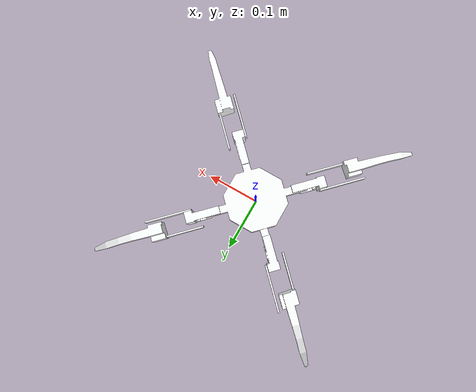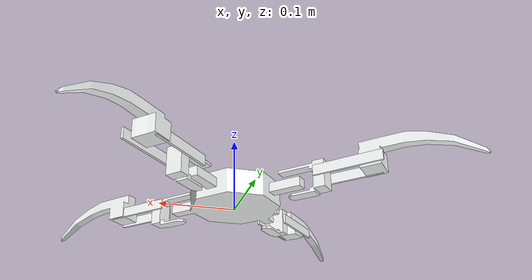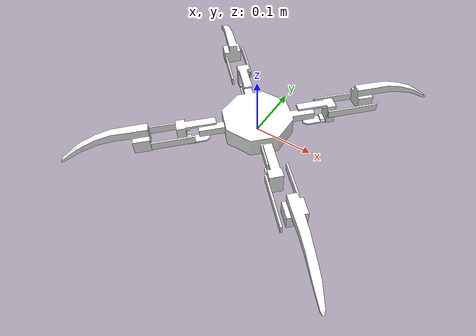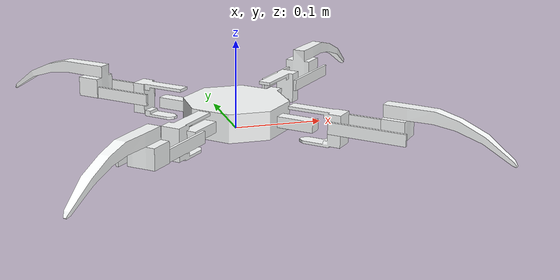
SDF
<?xml version="1.0" encoding="utf-8"?>

<sdf version='1.9'>
  <model name='laracna'>
    <link name='base_link'>
      <inertial>
        <pose>-0.000549635703823248 0.000293483149070013 0.0112605913949021 0 0 0</pose>
        <mass>0.14927705759424001</mass>
      </inertial>
      <collision name='base_link_collision'>
        <pose>0 0 0 0 0 0</pose>
        <geometry>
          <mesh>
            <scale>1 1 1</scale>
            <uri>package://ros_gz_example_description/meshes/base_link_collider.stl</uri>
          </mesh>
        </geometry>
      </collision>
      <visual name='base_link_visual'>
        <pose>0 0 0 0 0 0</pose>
        <geometry>
          <mesh>
            <scale>1 1 1</scale>
            <uri>package://ros_gz_example_description/meshes/base_link_collider.stl</uri>
          </mesh>
        </geometry>
        <material>
          <diffuse>0.990196 1 1 1</diffuse>
          <ambient>0.990196 1 1 1</ambient>
        </material>
      </visual>
    </link>
    <joint name='coxa_lb_j' type='revolute'>
      <pose relative_to='base_link'>-0.06297700000000001 0.062553 0.0355 1.5708 0 2.3562</pose>
      <parent>base_link</parent>
      <child>coxa_lb</child>
      <axis>
        <xyz>0 1 0</xyz>
        <limit>
          <lower>-10000000000000000</lower>
          <upper>10000000000000000</upper>
        </limit>
        <dynamics>
          <damping>0.10000000000000001</damping>
          <friction>0.10000000000000001</friction>
          <spring_reference>0</spring_reference>
          <spring_stiffness>0</spring_stiffness>
        </dynamics>
      </axis>
    </joint>
    <link name='coxa_lb'>
      <pose relative_to='coxa_lb_j'>0 0 0 0 0 0</pose>
      <inertial>
        <pose>0.0311676418899572 -0.0171857800823059 -0.000875524395071652 0 0 0</pose>
        <mass>0.016883587648962601</mass>
        <inertia>
          <ixx>1.6952188219386e-06</ixx>
          <ixy>3.8328722716107099e-09</ixy>
          <ixz>-1.68767618013713e-08</ixz>
          <iyy>1.4858149033158899e-06</iyy>
          <iyz>2.6793634129095399e-08</iyz>
          <izz>1.7787742903464599e-06</izz>
        </inertia>
      </inertial>
      <collision name='coxa_lb_collision'>
        <pose>0 0 0 0 0 0</pose>
        <geometry>
          <mesh>
            <scale>1 1 1</scale>
            <uri>package://ros_gz_example_description/meshes/coxa_lb_collider.stl</uri>
          </mesh>
        </geometry>
      </collision>
      <visual name='coxa_lb_visual'>
        <pose>0 0 0 0 0 0</pose>
        <geometry>
          <mesh>
            <scale>1 1 1</scale>
            <uri>package://ros_gz_example_description/meshes/coxa_lb_collider.stl</uri>
          </mesh>
        </geometry>
        <material>
          <diffuse>0.990196 1 1 1</diffuse>
          <ambient>0.990196 1 1 1</ambient>
        </material>
      </visual>
    </link>
    <joint name='femur_lb_j' type='revolute'>
      <pose relative_to='coxa_lb'>0.03814 -0.0126 -0.02153 0.0016676 0.0016676 0.0</pose>
      <parent>coxa_lb</parent>
      <child>femur_lb</child>
      <axis>
        <xyz>0 0 -1</xyz>
        <limit>
          <lower>-10000000000000000</lower>
          <upper>10000000000000000</upper>
        </limit>
        <dynamics>
          <damping>0.10000000000000001</damping>
          <friction>0.10000000000000001</friction>
          <spring_reference>0</spring_reference>
          <spring_stiffness>0</spring_stiffness>
        </dynamics>
      </axis>
    </joint>
    <link name='femur_lb'>
      <pose relative_to='femur_lb_j'>0 0 0 0 0 0</pose>
      <inertial>
        <pose>0.0300000000000009 -4.00077502987761e-06 0.0177499999999991 0 0 0</pose>
        <mass>0.0087586509816886208</mass>
        <inertia>
          <ixx>2.35107438626411e-07</ixx>
          <ixy>-3.6395946952333199e-22</ixy>
          <ixz>-3.1996158667402898e-09</ixz>
          <iyy>1.10345188527737e-06</iyy>
          <iyz>-2.6469779601696897e-23</iyz>
          <izz>1.32562067354555e-06</izz>
        </inertia>
      </inertial>
      <collision name='femur_lb_collision'>
        <pose>0 0 0 0 0 0</pose>
        <geometry>
          <mesh>
            <scale>1 1 1</scale>
            <uri>package://ros_gz_example_description/meshes/femur_lb_collider.stl</uri>
          </mesh>
        </geometry>
      </collision>
      <visual name='femur_lb_visual'>
        <pose>0 0 0 0 0 0</pose>
        <geometry>
          <mesh>
            <scale>1 1 1</scale>
            <uri>package://ros_gz_example_description/meshes/femur_lb_collider.stl</uri>
          </mesh>
        </geometry>
        <material>
          <diffuse>0.990196 1 1 1</diffuse>
          <ambient>0.990196 1 1 1</ambient>
        </material>
      </visual>
    </link>
    <joint name='tibia_lb_j' type='revolute'>
      <pose relative_to='femur_lb'>0.06 0 0.0355 0 0 0.0</pose>
      <parent>femur_lb</parent>
      <child>tibia_lb</child>
      <axis>
        <xyz>0 0 1</xyz>
        <limit>
          <lower>-10000000000000000</lower>
          <upper>10000000000000000</upper>
        </limit>
        <dynamics>
          <damping>0.10000000000000001</damping>
          <friction>0.10000000000000001</friction>
          <spring_reference>0</spring_reference>
          <spring_stiffness>0</spring_stiffness>
        </dynamics>
      </axis>
    </joint>
    <link name='tibia_lb'>
      <pose relative_to='tibia_lb_j'>0 0 0 0 0 0</pose>
      <inertial>
        <pose>0.0253809510265003 0.00775604947350703 -0.0209014173200577 0 0 0</pose>
        <mass>0.024465634890062701</mass>
        <inertia>
          <ixx>2.23438595150403e-06</ixx>
          <ixy>3.41065896314887e-06</ixy>
          <ixz>2.6777231332716699e-08</ixz>
          <iyy>1.8425419902973798e-05</iyy>
          <iyz>-1.7331887953733701e-08</iyz>
          <izz>1.9115314259691301e-05</izz>
        </inertia>
      </inertial>
      <collision name='tibia_lb_collision'>
        <pose>0 0 0 0 0 0</pose>
        <geometry>
          <mesh>
            <scale>1 1 1</scale>
            <uri>package://ros_gz_example_description/meshes/tibia_lb_collider.stl</uri>
          </mesh>
        </geometry>
      </collision>
      <visual name='tibia_lb_visual'>
        <pose>0 0 0 0 0 0</pose>
        <geometry>
          <mesh>
            <scale>1 1 1</scale>
            <uri>package://ros_gz_example_description/meshes/tibia_lb_collider.stl</uri>
          </mesh>
        </geometry>
        <material>
          <diffuse>0.990196 1 1 1</diffuse>
          <ambient>0.990196 1 1 1</ambient>
        </material>
      </visual>
    </link>
    <joint name='coxa_lt_j' type='revolute'>
      <pose relative_to='base_link'>0.062553 0.06297700000000001 0.0355 1.5708 0 0.7854000000000001</pose>
      <parent>base_link</parent>
      <child>coxa_lt</child>
      <axis>
        <xyz>0 1 0</xyz>
        <limit>
          <lower>-10000000000000000</lower>
          <upper>10000000000000000</upper>
        </limit>
        <dynamics>
          <damping>0.10000000000000001</damping>
          <friction>0.10000000000000001</friction>
          <spring_reference>0</spring_reference>
          <spring_stiffness>0</spring_stiffness>
        </dynamics>
      </axis>
    </joint>
    <link name='coxa_lt'>
      <pose relative_to='coxa_lt_j'>0 0 0 0 0 0</pose>
      <inertial>
        <pose>0.0311676418899575 -0.0171857800823059 -0.000875524395070736 0 0 0</pose>
        <mass>0.016883587648962601</mass>
        <inertia>
          <ixx>1.6952188219386e-06</ixx>
          <ixy>3.8328722716109299e-09</ixy>
          <ixz>-1.6876761801371101e-08</ixz>
          <iyy>1.4858149033158899e-06</iyy>
          <iyz>2.6793634129094899e-08</iyz>
          <izz>1.7787742903464599e-06</izz>
        </inertia>
      </inertial>
      <collision name='coxa_lt_collision'>
        <pose>0 0 0 0 0 0</pose>
        <geometry>
          <mesh>
            <scale>1 1 1</scale>
            <uri>package://ros_gz_example_description/meshes/coxa_lb_collider.stl</uri>
          </mesh>
        </geometry>
      </collision>
      <visual name='coxa_lt_visual'>
        <pose>0 0 0 0 0 0</pose>
        <geometry>
          <mesh>
            <scale>1 1 1</scale>
            <uri>package://ros_gz_example_description/meshes/coxa_lb_collider.stl</uri>
          </mesh>
        </geometry>
        <material>
          <diffuse>0.990196 1 1 1</diffuse>
          <ambient>0.990196 1 1 1</ambient>
        </material>
      </visual>
    </link>
    <joint name='femur_lt_j' type='revolute'>
      <pose relative_to='coxa_lt'>0.03814 -0.0126 -0.02153 0.0016676 0.0016676 0.0</pose>
      <parent>coxa_lt</parent>
      <child>femur_lt</child>
      <axis>
        <xyz>0 0 -1</xyz>
        <limit>
          <lower>-10000000000000000</lower>
          <upper>10000000000000000</upper>
        </limit>
        <dynamics>
          <damping>0.10000000000000001</damping>
          <friction>0.10000000000000001</friction>
          <spring_reference>0</spring_reference>
          <spring_stiffness>0</spring_stiffness>
        </dynamics>
      </axis>
    </joint>
    <link name='femur_lt'>
      <pose relative_to='femur_lt_j'>0 0 0 0 0 0</pose>
      <inertial>
        <pose>0.0300000000000001 -4.00077503040497e-06 0.01775 0 0 0</pose>
        <mass>0.0087586509816886</mass>
        <inertia>
          <ixx>2.35107438626411e-07</ixx>
          <ixy>5.2277814713351302e-22</ixy>
          <ixz>-3.1996158667403002e-09</ixz>
          <iyy>1.10345188527737e-06</iyy>
          <iyz>-4.4998625322884696e-22</iyz>
          <izz>1.32562067354555e-06</izz>
        </inertia>
      </inertial>
      <collision name='femur_lt_collision'>
        <pose>0 0 0 0 0 0</pose>
        <geometry>
          <mesh>
            <scale>1 1 1</scale>
            <uri>package://ros_gz_example_description/meshes/femur_lb_collider.stl</uri>
          </mesh>
        </geometry>
      </collision>
      <visual name='femur_lt_visual'>
        <pose>0 0 0 0 0 0</pose>
        <geometry>
          <mesh>
            <scale>1 1 1</scale>
            <uri>package://ros_gz_example_description/meshes/femur_lb_collider.stl</uri>
          </mesh>
        </geometry>
        <material>
          <diffuse>0.990196 1 1 1</diffuse>
          <ambient>0.990196 1 1 1</ambient>
        </material>
      </visual>
    </link>
    <joint name='tibia_lt_j' type='revolute'>
      <pose relative_to='femur_lt'>0.06 0 0.0355 0 0 0.0</pose>
      <parent>femur_lt</parent>
      <child>tibia_lt</child>
      <axis>
        <xyz>0 0 1</xyz>
        <limit>
          <lower>-10000000000000000</lower>
          <upper>10000000000000000</upper>
        </limit>
        <dynamics>
          <damping>0.10000000000000001</damping>
          <friction>0.10000000000000001</friction>
          <spring_reference>0</spring_reference>
          <spring_stiffness>0</spring_stiffness>
        </dynamics>
      </axis>
    </joint>
    <link name='tibia_lt'>
      <pose relative_to='tibia_lt_j'>0 0 0 0 0 0</pose>
      <inertial>
        <pose>0.0253797905900474 0.00775572324591811 -0.0209014190388057 0 0 0</pose>
        <mass>0.024465640203770501</mass>
        <inertia>
          <ixx>2.23538745051556e-06</ixx>
          <ixy>3.4090374518825201e-06</ixy>
          <ixz>2.6777394321015401e-08</ixz>
          <iyy>1.8424422417696899e-05</iyy>
          <iyz>-1.7331806563168698e-08</iyz>
          <izz>1.9115318342821998e-05</izz>
        </inertia>
      </inertial>
      <collision name='tibia_lt_collision'>
        <pose>0 0 0 0 0 0</pose>
        <geometry>
          <mesh>
            <scale>1 1 1</scale>
            <uri>package://ros_gz_example_description/meshes/tibia_lb_collider.stl</uri>
          </mesh>
        </geometry>
      </collision>
      <visual name='tibia_lt_visual'>
        <pose>0 0 0 0 0 0</pose>
        <geometry>
          <mesh>
            <scale>1 1 1</scale>
            <uri>package://ros_gz_example_description/meshes/tibia_lb_collider.stl</uri>
          </mesh>
        </geometry>
        <material>
          <diffuse>0.990196 1 1 1</diffuse>
          <ambient>0.990196 1 1 1</ambient>
        </material>
      </visual>
    </link>
    <joint name='coxa_rb_j' type='revolute'>
      <pose relative_to='base_link'>-0.062553 -0.06297700000000001 0.0355 1.5708 0 -2.3562</pose>
      <parent>base_link</parent>
      <child>coxa_rb</child>
      <axis>
        <xyz>0 1 0</xyz>
        <limit>
          <lower>-10000000000000000</lower>
          <upper>10000000000000000</upper>
        </limit>
        <dynamics>
          <damping>0.10000000000000001</damping>
          <friction>0.10000000000000001</friction>
          <spring_reference>0</spring_reference>
          <spring_stiffness>0</spring_stiffness>
        </dynamics>
      </axis>
    </joint>
    <link name='coxa_rb'>
      <pose relative_to='coxa_rb_j'>0 0 0 0 0 0</pose>
      <inertial>
        <pose>0.0311676418899572 -0.0171857800823059 -0.000875524395071652 0 0 0</pose>
        <mass>0.016883587648962601</mass>
        <inertia>
          <ixx>1.6952188219386e-06</ixx>
          <ixy>3.8328722716109299e-09</ixy>
          <ixz>-1.6876761801371399e-08</ixz>
          <iyy>1.4858149033158899e-06</iyy>
          <iyz>2.6793634129095101e-08</iyz>
          <izz>1.7787742903464599e-06</izz>
        </inertia>
      </inertial>
      <collision name='coxa_rb_collision'>
        <pose>0 0 0 0 0 0</pose>
        <geometry>
          <mesh>
            <scale>1 1 1</scale>
            <uri>package://ros_gz_example_description/meshes/coxa_lb_collider.stl</uri>
          </mesh>
        </geometry>
      </collision>
      <visual name='coxa_rb_visual'>
        <pose>0 0 0 0 0 0</pose>
        <geometry>
          <mesh>
            <scale>1 1 1</scale>
            <uri>package://ros_gz_example_description/meshes/coxa_lb_collider.stl</uri>
          </mesh>
        </geometry>
        <material>
          <diffuse>0.990196 1 1 1</diffuse>
          <ambient>0.990196 1 1 1</ambient>
        </material>
      </visual>
    </link>
    <joint name='femur_rb_j' type='revolute'>
      <pose relative_to='coxa_rb'>0.03814 -0.0126 -0.02153 0.0016676 0.0016676 0.0</pose>
      <parent>coxa_rb</parent>
      <child>femur_rb</child>
      <axis>
        <xyz>0 0 -1</xyz>
        <limit>
          <lower>-10000000000000000</lower>
          <upper>10000000000000000</upper>
        </limit>
        <dynamics>
          <damping>0.10000000000000001</damping>
          <friction>0.10000000000000001</friction>
          <spring_reference>0</spring_reference>
          <spring_stiffness>0</spring_stiffness>
        </dynamics>
      </axis>
    </joint>
    <link name='femur_rb'>
      <pose relative_to='femur_rb_j'>0 0 0 0 0 0</pose>
      <inertial>
        <pose>0.0300000000000003 -4.00077503072416e-06 0.0177499999999999 0 0 0</pose>
        <mass>0.0087586509816885896</mass>
        <inertia>
          <ixx>2.35107438626411e-07</ixx>
          <ixy>4.8307347773096797e-22</ixy>
          <ixz>-3.19961586674027e-09</ixz>
          <iyy>1.10345188527737e-06</iyy>
          <iyz>-1.32348898008484e-22</iyz>
          <izz>1.32562067354555e-06</izz>
        </inertia>
      </inertial>
      <collision name='femur_rb_collision'>
        <pose>0 0 0 0 0 0</pose>
        <geometry>
          <mesh>
            <scale>1 1 1</scale>
            <uri>package://ros_gz_example_description/meshes/femur_lb_collider.stl</uri>
          </mesh>
        </geometry>
      </collision>
      <visual name='femur_rb_visual'>
        <pose>0 0 0 0 0 0</pose>
        <geometry>
          <mesh>
            <scale>1 1 1</scale>
            <uri>package://ros_gz_example_description/meshes/femur_lb_collider.stl</uri>
          </mesh>
        </geometry>
        <material>
          <diffuse>0.990196 1 1 1</diffuse>
          <ambient>0.990196 1 1 1</ambient>
        </material>
      </visual>
    </link>
    <joint name='tibia_rb_j' type='revolute'>
      <pose relative_to='femur_rb'>0.06 0 0.0355 0 0 0.0</pose>
      <parent>femur_rb</parent>
      <child>tibia_rb</child>
      <axis>
        <xyz>0 0 1</xyz>
        <limit>
          <lower>-10000000000000000</lower>
          <upper>10000000000000000</upper>
        </limit>
        <dynamics>
          <damping>0.10000000000000001</damping>
          <friction>0.10000000000000001</friction>
          <spring_reference>0</spring_reference>
          <spring_stiffness>0</spring_stiffness>
        </dynamics>
      </axis>
    </joint>
    <link name='tibia_rb'>
      <pose relative_to='tibia_rb_j'>0 0 0 0 0 0</pose>
      <inertial>
        <pose>0.0253791910136747 0.00775560067495526 -0.0209014204080387 0 0 0</pose>
        <mass>0.024465633499710801</mass>
        <inertia>
          <ixx>2.2357718345824198e-06</ixx>
          <ixy>3.4081973690407799e-06</ixy>
          <ixz>2.6779975325357602e-08</ixz>
          <iyy>1.8424041465719599e-05</iyy>
          <iyz>-1.7332665172973501e-08</iyz>
          <izz>1.9115321876941701e-05</izz>
        </inertia>
      </inertial>
      <collision name='tibia_rb_collision'>
        <pose>0 0 0 0 0 0</pose>
        <geometry>
          <mesh>
            <scale>1 1 1</scale>
            <uri>package://ros_gz_example_description/meshes/tibia_lb_collider.stl</uri>
          </mesh>
        </geometry>
      </collision>
      <visual name='tibia_rb_visual'>
        <pose>0 0 0 0 0 0</pose>
        <geometry>
          <mesh>
            <scale>1 1 1</scale>
            <uri>package://ros_gz_example_description/meshes/tibia_lb_collider.stl</uri>
          </mesh>
        </geometry>
        <material>
          <diffuse>0.990196 1 1 1</diffuse>
          <ambient>0.990196 1 1 1</ambient>
        </material>
      </visual>
    </link>
    <joint name='coxa_rt_j' type='revolute'>
      <pose relative_to='base_link'>0.06297700000000001 -0.062553 0.0355 1.5708 0 -0.7854000000000001</pose>
      <parent>base_link</parent>
      <child>coxa_rt</child>
      <axis>
        <xyz>0 1 0</xyz>
        <limit>
          <lower>-10000000000000000</lower>
          <upper>10000000000000000</upper>
        </limit>
        <dynamics>
          <damping>0.10000000000000001</damping>
          <friction>0.10000000000000001</friction>
          <spring_reference>0</spring_reference>
          <spring_stiffness>0</spring_stiffness>
        </dynamics>
      </axis>
    </joint>
    <link name='coxa_rt'>
      <pose relative_to='coxa_rt_j'>0 0 0 0 0 0</pose>
      <inertial>
        <pose>0.0311676418899572 -0.0171857800823059 -0.000875524395071665 0 0 0</pose>
        <mass>0.016883587648962601</mass>
        <inertia>
          <ixx>1.6952188219386e-06</ixx>
          <ixy>3.8328722716107099e-09</ixy>
          <ixz>-1.68767618013712e-08</ixz>
          <iyy>1.4858149033159001e-06</iyy>
          <iyz>2.6793634129094998e-08</iyz>
          <izz>1.7787742903464599e-06</izz>
        </inertia>
      </inertial>
      <collision name='coxa_rt_collision'>
        <pose>0 0 0 0 0 0</pose>
        <geometry>
          <mesh>
            <scale>1 1 1</scale>
            <uri>package://ros_gz_example_description/meshes/coxa_lb_collider.stl</uri>
          </mesh>
        </geometry>
      </collision>
      <visual name='coxa_rt_visual'>
        <pose>0 0 0 0 0 0</pose>
        <geometry>
          <mesh>
            <scale>1 1 1</scale>
            <uri>package://ros_gz_example_description/meshes/coxa_lb_collider.stl</uri>
          </mesh>
        </geometry>
        <material>
          <diffuse>0.990196 1 1 1</diffuse>
          <ambient>0.990196 1 1 1</ambient>
        </material>
      </visual>
    </link>
    <joint name='femur_rt_j' type='revolute'>
      <pose relative_to='coxa_rt'>0.03814 -0.0126 -0.02153 0.0016676 0.0016676 0.0</pose>
      <parent>coxa_rt</parent>
      <child>femur_rt</child>
      <axis>
        <xyz>0 0 -1</xyz>
        <limit>
          <lower>-10000000000000000</lower>
          <upper>10000000000000000</upper>
        </limit>
        <dynamics>
          <damping>0.10000000000000001</damping>
          <friction>0.10000000000000001</friction>
          <spring_reference>0</spring_reference>
          <spring_stiffness>0</spring_stiffness>
        </dynamics>
      </axis>
    </joint>
    <link name='femur_rt'>
      <pose relative_to='femur_rt_j'>0 0 0 0 0 0</pose>
      <inertial>
        <pose>0.0300000000000002 -4.00077503043272e-06 0.0177500000000002 0 0 0</pose>
        <mass>0.0087586509816886104</mass>
        <inertia>
          <ixx>2.35107438626411e-07</ixx>
          <ixy>3.1101991031993798e-22</ixy>
          <ixz>-3.1996158667405301e-09</ixz>
          <iyy>1.10345188527737e-06</iyy>
          <iyz>-5.2939559203393795e-23</iyz>
          <izz>1.32562067354555e-06</izz>
        </inertia>
      </inertial>
      <collision name='femur_rt_collision'>
        <pose>0 0 0 0 0 0</pose>
        <geometry>
          <mesh>
            <scale>1 1 1</scale>
            <uri>package://ros_gz_example_description/meshes/femur_lb_collider.stl</uri>
          </mesh>
        </geometry>
      </collision>
      <visual name='femur_rt_visual'>
        <pose>0 0 0 0 0 0</pose>
        <geometry>
          <mesh>
            <scale>1 1 1</scale>
            <uri>package://ros_gz_example_description/meshes/femur_lb_collider.stl</uri>
          </mesh>
        </geometry>
        <material>
          <diffuse>0.990196 1 1 1</diffuse>
          <ambient>0.990196 1 1 1</ambient>
        </material>
      </visual>
    </link>
    <joint name='tibia_rt_j' type='revolute'>
      <pose relative_to='femur_rt'>0.06 0 0.0355 0 0 0.0</pose>
      <parent>femur_rt</parent>
      <child>tibia_rt</child>
      <axis>
        <xyz>0 0 1</xyz>
        <limit>
          <lower>-10000000000000000</lower>
          <upper>10000000000000000</upper>
        </limit>
        <dynamics>
          <damping>0.10000000000000001</damping>
          <friction>0.10000000000000001</friction>
          <spring_reference>0</spring_reference>
          <spring_stiffness>0</spring_stiffness>
        </dynamics>
      </axis>
    </joint>
    <link name='tibia_rt'>
      <pose relative_to='tibia_rt_j'>0 0 0 0 0 0</pose>
      <inertial>
        <pose>0.0253787836129874 0.00775552687574976 -0.0209014202651868 0 0 0</pose>
        <mass>0.0244656378567027</mass>
        <inertia>
          <ixx>2.2360031452749398e-06</ixx>
          <ixy>3.4075650884258901e-06</ixy>
          <ixz>2.6777894508114501e-08</ixz>
          <iyy>1.8423794056790301e-05</iyy>
          <iyz>-1.7332541884754699e-08</iyz>
          <izz>1.9115305836752498e-05</izz>
        </inertia>
      </inertial>
      <collision name='tibia_rt_collision'>
        <pose>0 0 0 0 0 0</pose>
        <geometry>
          <mesh>
            <scale>1 1 1</scale>
            <uri>package://ros_gz_example_description/meshes/tibia_lb_collider.stl</uri>
          </mesh>
        </geometry>
      </collision>
      <visual name='tibia_rt_visual'>
        <pose>0 0 0 0 0 0</pose>
        <geometry>
          <mesh>
            <scale>1 1 1</scale>
            <uri>package://ros_gz_example_description/meshes/tibia_lb_collider.stl</uri>
          </mesh>
        </geometry>
        <material>
          <diffuse>00.990196 1 1 1</diffuse>
          <ambient>0.990196 1 1 1</ambient>
        </material>
      </visual>
    </link>

  </model>
</sdf>
